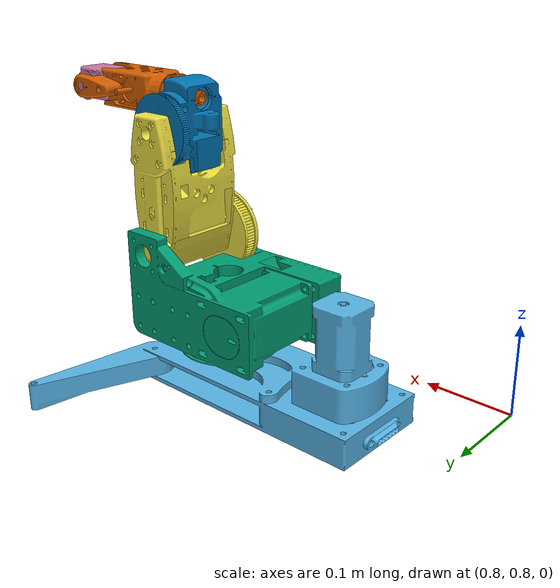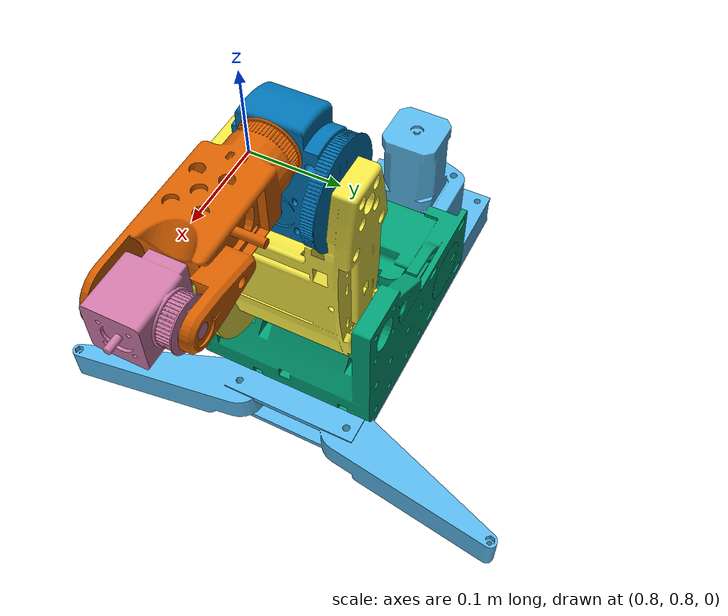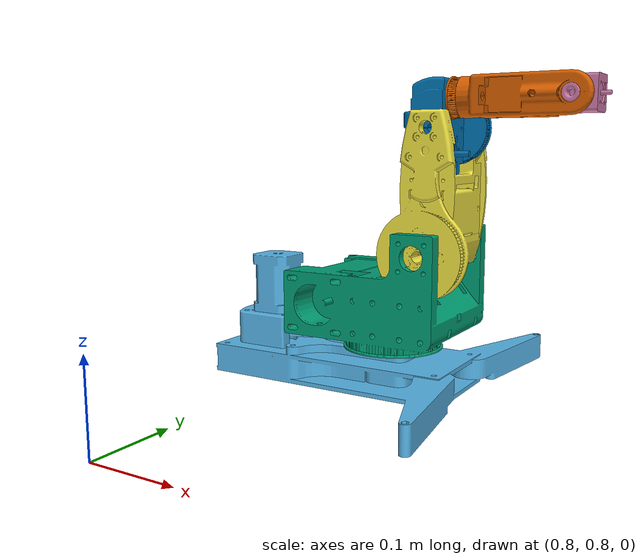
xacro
<?xml version="1.0"?>
<robot xmlns:xacro="http://www.ros.org/wiki/xacro"  name="robot">
    <xacro:include filename="my_materials.xacro"/>

    <!-- First link is empty world link -->
    <link name="world"></link>

<!-- Base -->
<joint name="base_joint" type="fixed">
    <parent link="world"/>
    <child link="base_link"/>
    <origin xyz="1 1 0" rpy="0 0 0"/>
</joint>

<link name="base_link">
  <visual>
    <origin xyz="0 0 0.05" rpy="0 0 0"/>
    <geometry>
      <mesh filename="package://my_package/meshes/base.stl" scale="0.01 0.01 0.01"/>
    </geometry>
  </visual>
</link>

<!-- Joint 1 -->
<joint name="joint_1" type="revolute">
    <parent link="base_link"/>
    <child link="link_1"/>
    <origin xyz="0 0 0.05" rpy="0 0 0"/>
    <axis xyz="0 0 1"/>
    <limit effort="100" velocity="1.5" lower="${-pi/3}" upper="${pi/3}"/>
</joint>

<link name="link_1">
  <visual>
    <origin xyz="0 0 0" rpy="0 0 0"/>
    <geometry>
      <mesh filename="package://my_package/meshes/j1.stl" scale="0.01 0.01 0.01"/>
    </geometry>
  </visual>
</link>

<!-- Joint 2 -->
<joint name="joint_2" type="revolute">
    <parent link="link_1"/>
    <child link="link_2"/>
    <origin xyz="0.047 0 0.135" rpy="0 0 0"/>
    <axis xyz="0 1 0"/>
    <limit effort="100" velocity="1.5" lower="${-0.42 * pi}" upper="${pi/2}"/>
</joint>

<link name="link_2">
    <visual>
        <origin xyz="-0.047 0 -0.135" rpy="0 0 0"/>
        <geometry>
        <mesh filename="package://my_package/meshes/j2.stl" scale="0.01 0.01 0.01"/>
        </geometry>
    </visual>
</link>

<!-- Joint 3 -->
<joint name="joint_3" type="revolute">
    <parent link="link_2"/>
    <child link="link_3"/>
    <origin xyz="0 0 0.110" rpy="0 0 0"/>
    <axis xyz="0 1 0"/>
    <limit effort="100" velocity="1.5" lower="${-pi/2}" upper="${0.4 * pi}"/>
</joint>

<link name="link_3">
    <visual>
            <origin xyz="-0.047 0 -0.245" rpy="0 0 0"/>
            <geometry>
            <mesh filename="package://my_package/meshes/j3.stl" scale="0.01 0.01 0.01"/>
            </geometry>
    </visual>
</link>

<!-- Joint 4 -->
<joint name="joint_4" type="revolute">
    <parent link="link_3"/>
    <child link="link_4"/>
    <origin xyz="0 0 0.026" rpy="0 0 0"/>
    <axis xyz="1 0 0"/>
    <limit effort="100" velocity="1.5" lower="${-(3 * pi)/2}" upper="${(3 * pi)/2}"/>
</joint>

<link name="link_4">
    <visual>
        <origin xyz="-0.047 0 -0.271" rpy="0 0 0"/>
        <geometry>
        <mesh filename="package://my_package/meshes/j4.stl" scale="0.01 0.01 0.01"/>
        </geometry>
    </visual>
</link>

<!-- Joint 5 -->
<joint name="joint_5" type="revolute">
    <parent link="link_4"/>
    <child link="link_5"/>
    <origin xyz="0.1175 0 0" rpy="0 0 0"/>
    <axis xyz="0 1 0"/>
    <limit effort="100" velocity="1.5" lower="${-0.6 * pi}" upper="${0.6 * pi}"/>
</joint>

<link name="link_5">
    <visual>
        <origin xyz="-0.1645 0 -0.271" rpy="0 0 0"/>
        <geometry>
        <mesh filename="package://my_package/meshes/j5.stl" scale="0.01 0.01 0.01"/>
        </geometry>
    </visual>
</link>

<!-- Joint 6 -->
<joint name="joint_6" type="continuous">
    <parent link="link_5"/>
    <child link="link_6"/>
    <origin xyz="0.0268 0 0" rpy="0 0 0"/>
    <axis xyz="1 0 0"/>
</joint>

<link name="link_6">
</link>

</robot>
